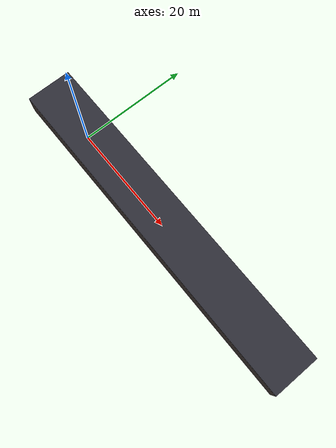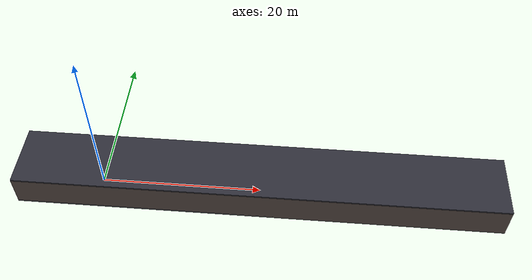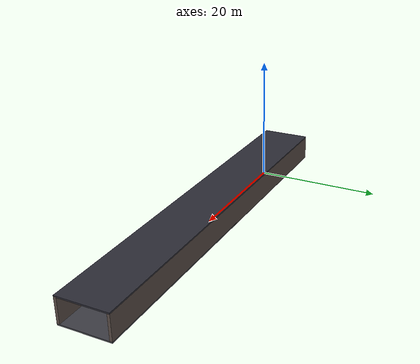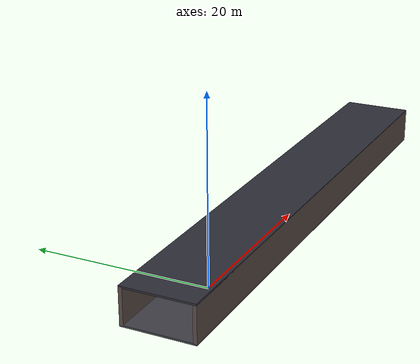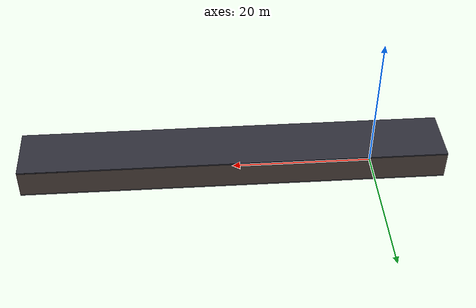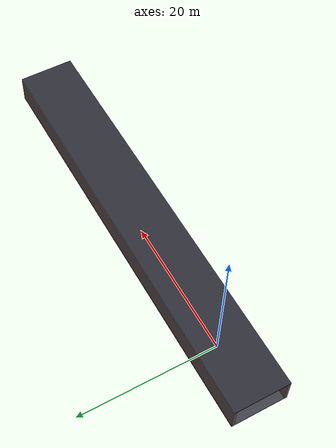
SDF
<?xml version="1.0" ?>
<sdf version="1.8">
  <world name="dark_tunnel_world">
    <physics name="1ms" type="dart">
      <max_step_size>0.004</max_step_size>
      <real_time_factor>1.0</real_time_factor>
    </physics>

    <!-- Sistem Eklentileri -->
    <plugin filename="gz-sim-physics-system" name="gz::sim::systems::Physics"/>
    <plugin filename="gz-sim-sensors-system" name="gz::sim::systems::Sensors">
      <render_engine>ogre2</render_engine>
    </plugin>
    <plugin filename="gz-sim-user-commands-system" name="gz::sim::systems::UserCommands"/>
    <plugin filename="gz-sim-scene-broadcaster-system" name="gz::sim::systems::SceneBroadcaster"/>

    <!-- 🌌 Karanlık Yeraltı / Tünel Atmosferi -->
    <scene>
      <ambient>0.15 0.15 0.18 1.0</ambient>
      <background>0.04 0.04 0.06 1.0</background>
      <grid>false</grid>
    </scene>

    <!-- Zemin (Beton / Taş Zemin) -->
    <model name="tunnel_floor">
      <static>true</static>
      <link name="link">
        <collision name="c">
          <geometry><box><size>60 8 0.2</size></box></geometry>
        </collision>
        <visual name="v">
          <geometry><box><size>60 8 0.2</size></box></geometry>
          <material>
            <ambient>0.2 0.2 0.22 1</ambient>
            <diffuse>0.25 0.25 0.28 1</diffuse>
          </material>
        </visual>
      </link>
      <pose>20 0 0 0 0 0</pose>
    </model>

    <!-- 🏠 Tünel Tavanı (Tamamen Kapalı) -->
    <model name="tunnel_ceiling">
      <static>true</static>
      <link name="link">
        <collision name="c">
          <geometry><box><size>60 8 0.2</size></box></geometry>
        </collision>
        <visual name="v">
          <geometry><box><size>60 8 0.2</size></box></geometry>
          <material>
            <ambient>0.15 0.15 0.18 1</ambient>
            <diffuse>0.18 0.18 0.22 1</diffuse>
          </material>
        </visual>
      </link>
      <pose>20 0 4.0 0 0 0</pose>
    </model>

    <!-- Sol Duvar -->
    <model name="tunnel_wall_left">
      <static>true</static>
      <link name="link">
        <collision name="c">
          <geometry><box><size>60 0.4 4.0</size></box></geometry>
        </collision>
        <visual name="v">
          <geometry><box><size>60 0.4 4.0</size></box></geometry>
          <material>
            <ambient>0.25 0.22 0.20 1</ambient>
            <diffuse>0.35 0.30 0.28 1</diffuse>
          </material>
        </visual>
      </link>
      <pose>20 -3.8 2.0 0 0 0</pose>
    </model>

    <!-- Sağ Duvar -->
    <model name="tunnel_wall_right">
      <static>true</static>
      <link name="link">
        <collision name="c">
          <geometry><box><size>60 0.4 4.0</size></box></geometry>
        </collision>
        <visual name="v">
          <geometry><box><size>60 0.4 4.0</size></box></geometry>
          <material>
            <ambient>0.25 0.22 0.20 1</ambient>
            <diffuse>0.35 0.30 0.28 1</diffuse>
          </material>
        </visual>
      </link>
      <pose>20 3.8 2.0 0 0 0</pose>
    </model>

    <!-- Tünel İçi Destek Kemerleri & Kolonlar -->
    <model name="arch_1">
      <static>true</static>
      <pose>8 0 2.0 0 0 0</pose>
      <link name="pillar_l"><visual name="v"><geometry><box><size>0.6 0.6 4.0</size></box></geometry><material><ambient>0.4 0.3 0.2 1</ambient></material></visual><pose>0 -3.4 0 0 0 0</pose></link>
      <link name="pillar_r"><visual name="v"><geometry><box><size>0.6 0.6 4.0</size></box></geometry><material><ambient>0.4 0.3 0.2 1</ambient></material></visual><pose>0 3.4 0 0 0 0</pose></link>
      <link name="beam"><visual name="v"><geometry><box><size>0.6 7.4 0.6</size></box></geometry><material><ambient>0.4 0.3 0.2 1</ambient></material></visual><pose>0 0 1.7 0 0 0</pose></link>
    </model>

    <model name="arch_2">
      <static>true</static>
      <pose>20 0 2.0 0 0 0</pose>
      <link name="pillar_l"><visual name="v"><geometry><box><size>0.6 0.6 4.0</size></box></geometry><material><ambient>0.4 0.3 0.2 1</ambient></material></visual><pose>0 -3.4 0 0 0 0</pose></link>
      <link name="pillar_r"><visual name="v"><geometry><box><size>0.6 0.6 4.0</size></box></geometry><material><ambient>0.4 0.3 0.2 1</ambient></material></visual><pose>0 3.4 0 0 0 0</pose></link>
      <link name="beam"><visual name="v"><geometry><box><size>0.6 7.4 0.6</size></box></geometry><material><ambient>0.4 0.3 0.2 1</ambient></material></visual><pose>0 0 1.7 0 0 0</pose></link>
    </model>

    <!-- Tünel İçi Engeller (Kaya Blokları) -->
    <model name="rock_obstacle1">
      <static>true</static>
      <pose>12 -1.2 0.7 0 0 0.4</pose>
      <link name="link">
        <collision name="c"><geometry><box><size>1.6 1.4 1.4</size></box></geometry></collision>
        <visual name="v"><geometry><box><size>1.6 1.4 1.4</size></box></geometry><material><ambient>0.5 0.35 0.2 1</ambient><diffuse>0.6 0.4 0.25 1</diffuse></material></visual>
      </link>
    </model>

    <model name="rock_obstacle2">
      <static>true</static>
      <pose>26 1.2 0.9 0 0 -0.4</pose>
      <link name="link">
        <collision name="c"><geometry><box><size>1.8 1.5 1.8</size></box></geometry></collision>
        <visual name="v"><geometry><box><size>1.8 1.5 1.8</size></box></geometry><material><ambient>0.3 0.4 0.5 1</ambient><diffuse>0.4 0.5 0.6 1</diffuse></material></visual>
      </link>
    </model>

    <!-- 🚁 Tünelde Havada Süzülen Quadcopter Dron -->
    <model name="tunnel_quadcopter">
      <pose>0 0 1.3 0 0 0</pose>
      <static>false</static>
      <link name="base_link">
        <gravity>false</gravity>
        <inertial>
          <mass>1.0</mass>
          <inertia><ixx>0.02</ixx><iyy>0.02</iyy><izz>0.04</izz></inertia>
        </inertial>

        <!-- Dron Gövdesi -->
        <visual name="body">
          <geometry><box><size>0.4 0.4 0.1</size></box></geometry>
          <material><ambient>0.1 0.1 0.12 1</ambient><diffuse>0.15 0.15 0.18 1</diffuse></material>
        </visual>
        <collision name="c">
          <geometry><box><size>0.4 0.4 0.1</size></box></geometry>
        </collision>

        <!-- Pervane Kolları -->
        <visual name="arm1"><geometry><cylinder><radius>0.02</radius><length>0.5</length></cylinder></geometry><pose>0 0 0 0 1.57 0.785</pose><material><ambient>0.9 0.1 0.1 1</ambient></material></visual>
        <visual name="arm2"><geometry><cylinder><radius>0.02</radius><length>0.5</length></cylinder></geometry><pose>0 0 0 0 1.57 -0.785</pose><material><ambient>0.1 0.4 0.9 1</ambient></material></visual>

        <!-- 💡 Dron Ön Feneri (Spotlight) -->
        <light type="spot" name="drone_headlight">
          <pose>0.25 0 0.05 0 0.1 0</pose>
          <diffuse>1.0 1.0 0.9 1</diffuse>
          <specular>0.5 0.5 0.5 1</specular>
          <attenuation><range>30</range><constant>0.2</constant><linear>0.05</linear><quadratic>0.01</quadratic></attenuation>
          <spot><inner_angle>0.6</inner_angle><outer_angle>1.2</outer_angle><falloff>0.8</falloff></spot>
          <direction>1 0 -0.1</direction>
          <cast_shadows>true</cast_shadows>
        </light>

        <!-- 📹 Dron HD Ön Kamerası -->
        <sensor name="camera" type="camera">
          <pose>0.25 0 0.05 0 0.05 0</pose>
          <camera>
            <horizontal_fov>1.4</horizontal_fov>
            <image><width>800</width><height>600</height><format>R8G8B8</format></image>
            <clip><near>0.05</near><far>60</far></clip>
          </camera>
          <always_on>1</always_on>
          <update_rate>30</update_rate>
          <visualize>true</visualize>
          <topic>camera</topic>
        </sensor>
      </link>
    </model>
  </world>
</sdf>
